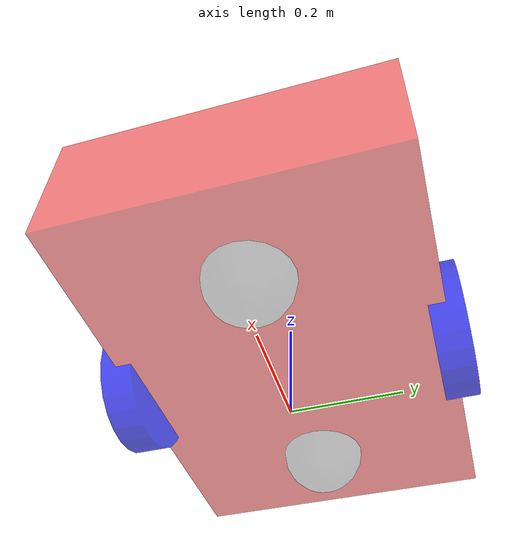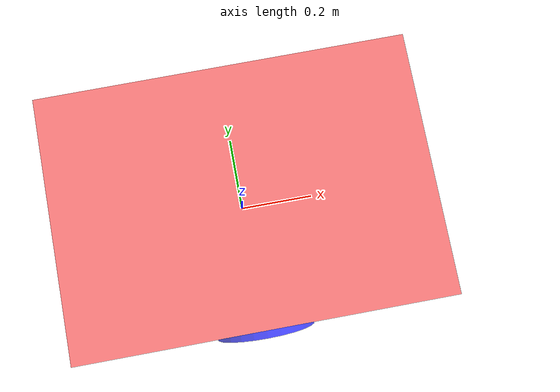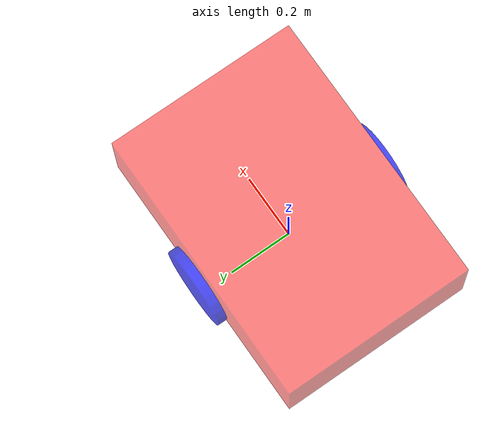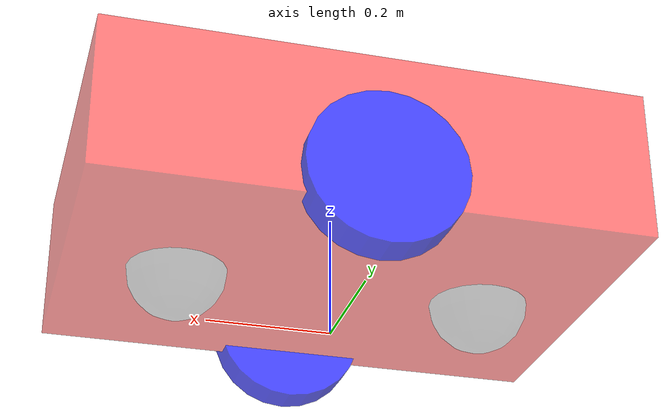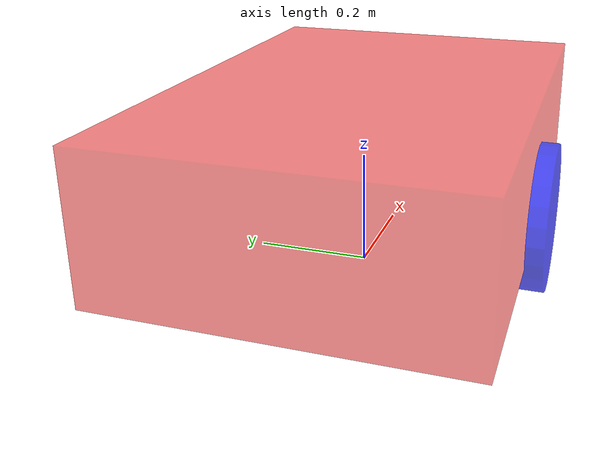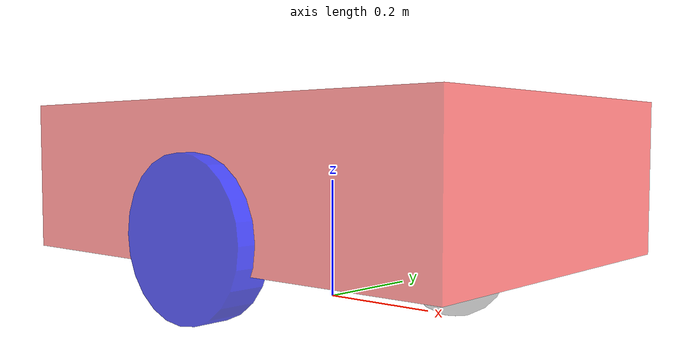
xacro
<robot name="mycar_text" xmlns:xacro="http://wiki.ros.org/xacro">
    <xacro:property name="footprint_radius" value="0.001"/>
    <link name="base_footprint">
        <visual>
            <geometry>
                <sphere radius="${footprint_radius}" />
            </geometry>
        </visual>
    </link>
    <!-- 底盘 -->
    <xacro:property name="base_length" value="0.86"/>
    <xacro:property name="base_width" value="0.60"/>
    <xacro:property name="base_height" value="0.25"/>
    <xacro:property name="base_mass" value="2"/>
    <xacro:property name="lidi" value="0.08"/>
    <xacro:property name="base_joint_z" value="${base_height}/2+${lidi}"/>
    <link name="base_link">
        <visual>
            <geometry>
                <box size="0.86 0.60 0.25" />
            </geometry>
                <origin xyz="0 0 0" rpy="0 0 0" />
                <material name="car_color">
                    <color rgba="1 0 0 0.5"/>
                </material>
        </visual>

        <collision>
            <geometry>
                <box size="0.86 0.60 0.25" />
            </geometry>
                <origin xyz="0 0 0" rpy="0 0 0" />
        </collision>

            <xacro:Box_inertial_matrix m="${base_mass}" l="${base_length}" w="${base_width}" h="${base_height}"/>

    </link>
        <gazebo reference="base_link">
            <material>Gazebo/Yellow</material>
        </gazebo>
    <!-- joint -->
    <joint name="link2footprint" type="fixed">
        <parent link="base_footprint"/>
        <child link="base_link"/>
        <origin xyz="0 0 0.205" rpy="0 0 0"/>
    </joint>
    <!-- 属性 -->
    <xacro:property name="big_wheel_radius" value="0.125" />
    <xacro:property name="big_wheel_mass" value="0.01" />
    <xacro:property name="small_wheel_radius" value="0.09" />
    <xacro:property name="small_wheel_mass" value="0.05" />
    <xacro:property name="wheel_length" value="0.06" />
    <xacro:property name="wanxiang_radius" value="0.08" />
    <xacro:property name="PI" value="3.1415927" />
    <xacro:property name="wheel_joint_z" value="${base_height/2-0.3}" />
    <xacro:macro name="wheel_func_big" params="wheel_name flag1 flag2 ">

        <!-- 驱动轮left_front_big_wheel -->
        <link name="${wheel_name}_big_wheel">
            <visual>
                <geometry>
                    <cylinder radius="${big_wheel_radius}" length="${wheel_length}" />
                </geometry>
                    <origin xyz="0 0 0" rpy="${PI/2} 0 0" />
                    <material name="${wheel_name}_big_wheel_color">
                        <color rgba="0 0 1 0.7"/>
                    </material>
            </visual>
            <collision>
                <geometry>
                    <cylinder radius="${big_wheel_radius}" length="${wheel_length}" />
                </geometry>
                    <origin xyz="0 0 0" rpy="${PI/2} 0 0" />
            </collision>
            <xacro:cylinder_inertial_matrix m="${big_wheel_mass}" r="${big_wheel_radius}" h="${wheel_length}"/>
        </link>
        <gazebo reference="${wheel_name}_big_wheel">
            <material>Gazebo/Red</material>
            <mu1>10000000</mu1>
            <mu2>10000000</mu2>
            <kp>10000000</kp>
            <kd>1</kd>
        </gazebo>
    <!-- joint -->
        <joint name="${wheel_name}big_wheel2link" type="continuous">
            <parent link="base_link"/>
            <child link="${wheel_name}_big_wheel"/>
            <origin xyz="0 ${0.3*flag2} -0.08" rpy="0 0 0"/>
            <axis xyz="0 1 0"/>
        </joint>
    </xacro:macro>
    <xacro:wheel_func_big wheel_name="left_back" flag1="-1" flag2="1"/>
    <xacro:wheel_func_big wheel_name="right_back" flag1="-1" flag2="-1"/>

    <xacro:macro name="wheel_func_small" params="wheel_name flag1 flag2 ">
    <!-- 驱动轮left_front_small_wheel -->
    <link name="${wheel_name}_small_wheel">
        <visual>
            <geometry>
                <cylinder radius="${small_wheel_radius}" length="${wheel_length}" />
            </geometry>
                <origin xyz="0 0 0" rpy="${PI/2} 0 0" />
                <material name="${wheel_name}_small_wheel_color">
                    <color rgba="0 0 1 0.7"/>
                </material>
        </visual>
        <collision>
            <geometry>
                <cylinder radius="${small_wheel_radius}" length="${wheel_length}" />
            </geometry>
                <origin xyz="0 0 0" rpy="${PI/2} 0 0" />
        </collision>
        <xacro:cylinder_inertial_matrix m="${small_wheel_mass}" r="${small_wheel_radius}" h="${wheel_length}"/>
    </link>
    <gazebo reference="${wheel_name}_small_wheel">
        <material>Gazebo/Red</material>
    </gazebo>
   <!-- joint -->
    <joint name="${wheel_name}_small_wheel2link" type="continuous">
        <parent link="base_link"/>
        <child link="${wheel_name}_small_wheel"/>
        <origin xyz="${0.10*flag1} ${0.18*flag2} -0.125" rpy="0 0 0"/>
        <axis xyz="0 0 1"/>
    </joint>
</xacro:macro>
<xacro:property name="wanxiang_small_wheel_radius" value="0.08"/>
        <xacro:property name="wanxiang_small_wheel_mass" value="0.01"/>
        <xacro:property name="wanxiang_small_joint_z" value="${-1*(base_height/2+lidi-wanxiang_small_wheel_radius)}"/>
        <xacro:macro name="wanxiang_small_wheel_func" params=" wanxiang_small_wheel_name flag" >
         <link name="${wanxiang_small_wheel_name}_wheel">
            <visual>
                <geometry>
                    <sphere radius="${wanxiang_small_wheel_radius}" />
                </geometry>
                <origin xyz="0 0 0" rpy="0 0 0" />
                <material name="wanxiang_wheel_color">
                        <color rgba="0 0 0 0.3" />
                </material>
            </visual>
            <collision>
            <geometry>
                    <sphere radius="${wanxiang_small_wheel_radius}" />
                </geometry>
                <origin xyz="0 0 0" rpy="0 0 0" />
            </collision>
            <xacro:sphere_inertial_matrix m="${wanxiang_small_wheel_mass}" r="${wanxiang_small_wheel_radius}" />
        </link>
        <gazebo reference="${wanxiang_small_wheel_name}_wheel">
        <material>Gazebo/Red</material>
        </gazebo>

        <joint name="${wanxiang_small_wheel_name}2link" type="continuous">
            <parent link="base_link" />
            <child link="${wanxiang_small_wheel_name}_wheel" />
            <origin xyz="${0.25*flag} 0 ${wanxiang_small_joint_z}" rpy="0 0 0" />
            <axis xyz="0 1 0"/>
        </joint>
         </xacro:macro>
         <xacro:wanxiang_small_wheel_func wanxiang_small_wheel_name="front" flag="1"/>
         <xacro:wanxiang_small_wheel_func wanxiang_small_wheel_name="back" flag="-1"/>

</robot>
